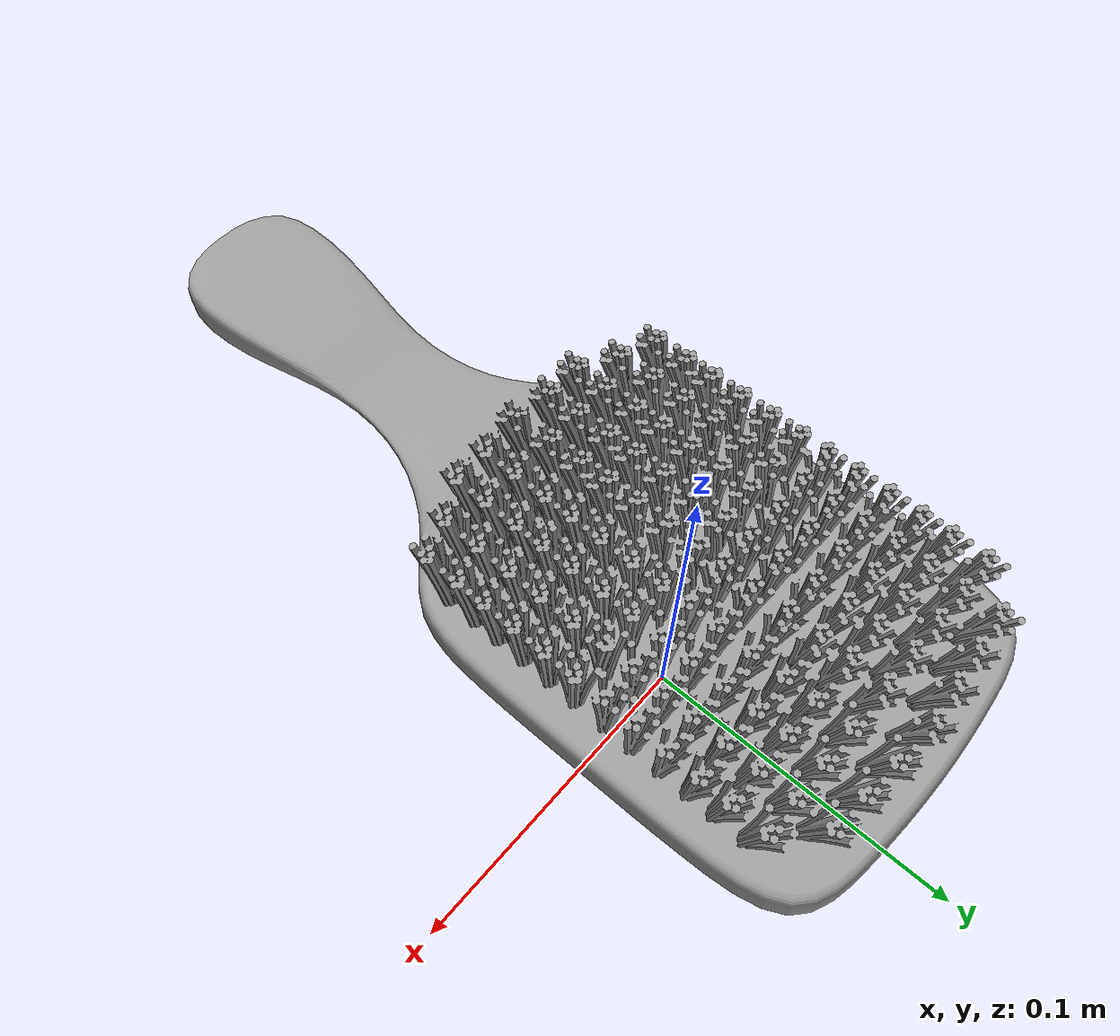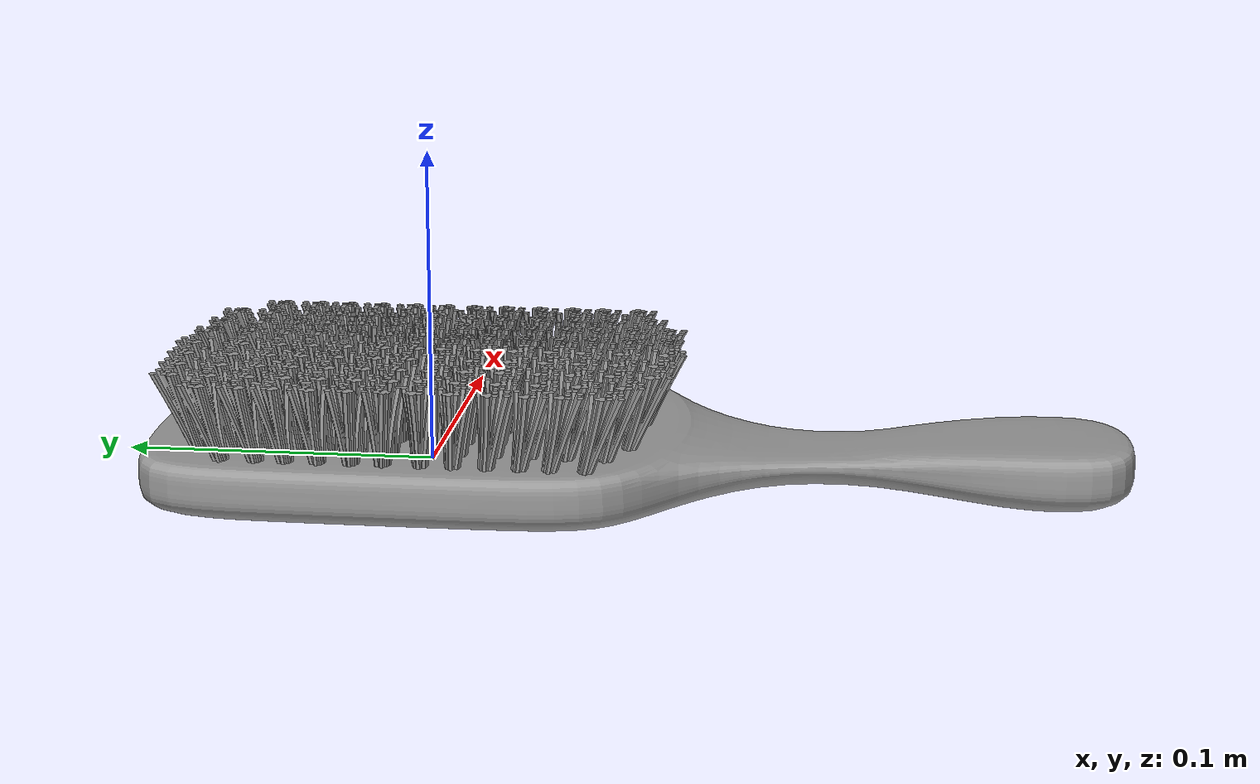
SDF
<?xml version='1.0'?>
<sdf version='1.6'>
  <model name='brush'>
    <link name='link_0'>
      <pose frame=''>3e-05 3e-06 0 0 -0 0</pose>
      <inertial>
        <mass>1</mass>
        <inertia>
          <ixx>0.166667</ixx>
          <ixy>0</ixy>
          <ixz>0</ixz>
          <iyy>0.166667</iyy>
          <iyz>0</iyz>
          <izz>0.166667</izz>
        </inertia>
      </inertial>
      <visual name='visual'>
        <pose frame=''>0 0 0 0 -0 0</pose>
        <geometry>
          <mesh>
            <uri>/home/zeal/xarm_ros/src/xarm6_moveit_config/objects/brush/ClubBrush_v1.obj</uri>
            <scale>0.005 0.005 0.005</scale>
          </mesh>
        </geometry>
        <material>
          <lighting>1</lighting>
          <script>
            <uri>file://media/materials/scripts/gazebo.material</uri>
            <name>Gazebo/Grey</name>
          </script>
          <shader type='pixel'/>
          <ambient>0.3 0.3 0.3 1</ambient>
          <diffuse>0.7 0.7 0.7 1</diffuse>
          <specular>0.001 0.01 0.01 1</specular>
          <emissive>0 0 0 1</emissive>
        </material>
        <transparency>0</transparency>
        <cast_shadows>1</cast_shadows>
      </visual>
      <collision name='collision'>
        <laser_retro>0</laser_retro>
        <max_contacts>10</max_contacts>
        <pose frame=''>0 0 0 0 -0 0</pose>
        <geometry>
          <mesh>
            <uri>/home/zeal/xarm_ros/src/xarm6_moveit_config/objects/brush/ClubBrush_v1.obj</uri>
            <scale>0.005 0.005 0.005</scale>
          </mesh>
        </geometry>
        <surface>
          <friction>
            <ode>
              <mu>1</mu>
              <mu2>1</mu2>
              <fdir1>0 0 0</fdir1>
              <slip1>0</slip1>
              <slip2>0</slip2>
            </ode>
            <torsional>
              <coefficient>1</coefficient>
              <patch_radius>0</patch_radius>
              <surface_radius>0</surface_radius>
              <use_patch_radius>1</use_patch_radius>
              <ode>
                <slip>0</slip>
              </ode>
            </torsional>
          </friction>
          <bounce>
            <restitution_coefficient>0</restitution_coefficient>
            <threshold>1e+06</threshold>
          </bounce>
          <contact>
            <collide_without_contact>0</collide_without_contact>
            <collide_without_contact_bitmask>1</collide_without_contact_bitmask>
            <collide_bitmask>1</collide_bitmask>
            <ode>
              <soft_cfm>0</soft_cfm>
              <soft_erp>0.2</soft_erp>
              <kp>1e+13</kp>
              <kd>1</kd>
              <max_vel>0.01</max_vel>
              <min_depth>0</min_depth>
            </ode>
            <bullet>
              <split_impulse>1</split_impulse>
              <split_impulse_penetration_threshold>-0.01</split_impulse_penetration_threshold>
              <soft_cfm>0</soft_cfm>
              <soft_erp>0.2</soft_erp>
              <kp>1e+13</kp>
              <kd>1</kd>
            </bullet>
          </contact>
        </surface>
      </collision>
    </link>
    <static>0</static>
    <allow_auto_disable>1</allow_auto_disable>
  </model>
</sdf>
